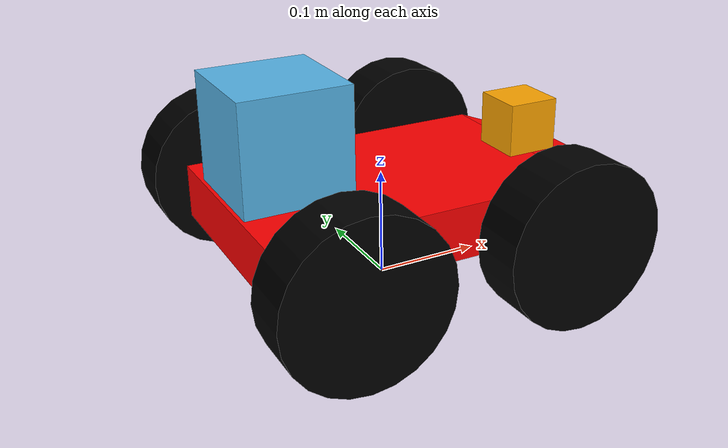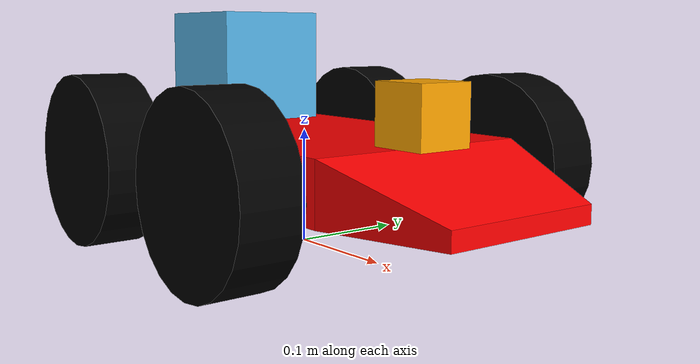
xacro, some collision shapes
<?xml version='1.0'?>

<robot name="test_robot" xmlns:xacro="http://www.ros.org/wiki/xacro">
  <xacro:include filename="$(find my_robot)/urdf/my_robot.gazebo" />
  <xacro:property name="wheel_mass" value="1.0"/>
  <xacro:property name="chassis_mass" value="10"/>
  <xacro:property name="wheel_radius" value="0.075"/>

  <link name="robot_footprint"></link>

  <joint name="robot_footprint_joint" type="fixed">
    <origin xyz="0 0 ${wheel_radius}" rpy="0 0 0" />
    <parent link="robot_footprint"/>
    <child link="chassis" />
  </joint>

  <link name="chassis">
    <inertial>
      <origin xyz="0.0 0.0 0.0" rpy="0.0 0.0 0.0"/>
      <mass value="${chassis_mass}"/>
      <inertia ixx="0.1" ixy="0.0" ixz="0.0" iyy="0.1" iyz="0.0" izz="0.1"/>
    </inertial>
    <visual name="">
      <origin xyz="0.0 0.0 0.0" rpy="0.0 0.0 0.0"/>
      <geometry>
        <box size="0.3 0.2 0.05"/>
      </geometry>
      <material name="">
        <color rgba="1.0 0.0 0.0 1.0"/>
      </material>
    </visual>
    <collision>
      <origin xyz="0.0 0.0 0.0" rpy="0.0 0.0 0.0"/>
      <geometry>
        <box size="0.3 0.2 0.05"/>
      </geometry>
    </collision>

  </link>

  <joint name="chassis__front" type="fixed">
    <origin xyz="0.15 0.0 0.0" rpy="0.0 0.0 0.0"/>
    <parent link="chassis"/>
    <child link="front"/>
    <axis xyz="0.0 0.0 0.0"/>
    <limit lower="0.0" upper="0.0" effort="0.0" velocity="0.0"/>
  </joint>

  <link name="front">
    <inertial>
      <origin xyz="0.0 0.0 0.0" rpy="0.0 0.0 -1.5707"/>
      <mass value="1"/>
      <inertia ixx="0.1" ixy="0.0" ixz="0.0" iyy="0.1" iyz="0.0" izz="0.1"/>
    </inertial>
    <visual name="">
      <origin xyz="0.0 0.0 0.0" rpy="0.0 0.0 -1.5707"/>
      <geometry>
        <mesh filename="package://my_robot/meshes/Front.dae"/>
      </geometry>
      <material name="">
        <color rgba="1.0 0.0 0.0 1.0"/>
      </material>
    </visual>
    <collision>
      <origin xyz="0.0 0.0 0.0" rpy="0.0 0.0 0.0"/>
      <geometry>
        <box size="0.1 0.2 0.05"/>
      </geometry>
    </collision>
  </link>

  <joint name="rear_left_wheel_hinge" type="continuous">
    <origin xyz="-0.1 0.15 0.0" rpy="0.0 0.0 0.0"/>
    <parent link="chassis"/>
    <child link="rear_left_wheel"/>
    <axis xyz="0.0 1 0.0"/>
    <limit lower="0.0" upper="0.0" effort="10000" velocity="1000"/>
    <dynamics damping="1.0" friction="1.0"/>
  </joint>

  <link name="rear_left_wheel">

    <inertial>
      <origin xyz="0.0 0.0 0.0" rpy="0.0 1.5707 1.5707"/>
      <mass value="${wheel_mass}"/>
      <inertia ixx="0.001" ixy="0.0" ixz="0.0" iyy="0.001" iyz="0.0" izz="0.001"/>
    </inertial>

    <visual name="">
      <origin xyz="0.0 0.0 0.0" rpy="0.0 1.5707 1.5707"/>
      <geometry>
        <cylinder radius="${wheel_radius}" length="0.05"/>
      </geometry>
      <material name="">
        <color rgba="0.0 0.0 0.0 1.0"/>
      </material>
    </visual>

    <collision>
      <origin xyz="0.0 0.0 0.0" rpy="0.0 1.5707 1.5707"/>
      <geometry>
        <cylinder radius="${wheel_radius}" length="0.05"/>
      </geometry>

      <surface>
        <friction>
          <ode>
            <mu>100000.0</mu>
            <mu2>100000.0</mu2>
          </ode>
        </friction>
        <contact>
          <ode>
            <min_depth>0.01</min_depth>
          </ode>
        </contact>
      </surface>

    </collision>

  </link>

  <joint name="front_left_wheel_hinge" type="continuous">
    <origin xyz="0.1 0.15 0.0" rpy="0.0 0.0 0.0"/>
    <parent link="chassis"/>
    <child link="front_left_wheel"/>
    <axis xyz="0.0 1 0.0"/>
    <limit lower="0.0" upper="0.0" effort="10000" velocity="1000"/>
    <dynamics damping="1.0" friction="1.0"/>
  </joint>

  <link name="front_left_wheel">

    <inertial>
      <origin xyz="0.0 0.0 0.0" rpy="0.0 1.5707 1.5707"/>
      <mass value="${wheel_mass}"/>
      <inertia ixx="0.001" ixy="0.0" ixz="0.0" iyy="0.001" iyz="0.0" izz="0.001"/>
    </inertial>

    <visual name="">
      <origin xyz="0.0 0.0 0.0" rpy="0.0 1.5707 1.5707"/>
      <geometry>
        <cylinder radius="${wheel_radius}" length="0.05"/>
      </geometry>
      <material name="">
        <color rgba="0.0 0.0 0.0 1.0"/>
      </material>
    </visual>

    <collision>
      <origin xyz="0.0 0.0 0.0" rpy="0.0 1.5707 1.5707"/>
      <geometry>
        <cylinder radius="${wheel_radius}" length="0.05"/>
      </geometry>
    </collision>

  </link>

  <joint name="rear_right_wheel_hinge" type="continuous">
    <origin xyz="-0.1 -0.15 0.0" rpy="0.0 0.0 0.0"/>
    <parent link="chassis"/>
    <child link="rear_right_wheel"/>
    <axis xyz="0.0 1 0.0"/>
    <limit lower="0.0" upper="0.0" effort="10000" velocity="1000"/>
    <dynamics damping="1.0" friction="1.0"/>
  </joint>

  <link name="rear_right_wheel">

    <inertial>
      <origin xyz="0.0 0.0 0.0" rpy="0.0 1.5707 1.5707"/>
      <mass value="${wheel_mass}"/>
      <inertia ixx="0.001" ixy="0.0" ixz="0.0" iyy="0.001" iyz="0.0" izz="0.001"/>
    </inertial>

    <visual name="">
      <origin xyz="0.0 0.0 0.0" rpy="0.0 1.5707 1.5707"/>
      <geometry>
        <cylinder radius="${wheel_radius}" length="0.05"/>
      </geometry>
      <material name="">
        <color rgba="0.0 0.0 0.0 1.0"/>
      </material>
    </visual>

    <collision>
      <origin xyz="0.0 0.0 0.0" rpy="0.0 1.5707 1.5707"/>
      <geometry>
        <cylinder radius="${wheel_radius}" length="0.05"/>
      </geometry>

      <surface>
        <friction>
          <ode>
            <mu>100000.0</mu>
            <mu2>100000.0</mu2>
          </ode>
        </friction>
        <contact>
          <ode>
            <min_depth>0.01</min_depth>
          </ode>
        </contact>
      </surface>
    </collision>

  </link>

  <joint name="front_right_wheel_hinge" type="continuous">
    <origin xyz="0.1 -0.15 0.0" rpy="0.0 0.0 0.0"/>
    <parent link="chassis"/>
    <child link="front_right_wheel"/>
    <axis xyz="0.0 1 0.0"/>
    <limit lower="0.0" upper="0.0" effort="10000" velocity="1000"/>
    <dynamics damping="1.0" friction="1.0"/>
  </joint>

  <link name="front_right_wheel">

    <inertial>
      <origin xyz="0.0 0.0 0.0" rpy="0.0 1.5707 1.5707"/>
      <mass value="${wheel_mass}"/>
      <inertia ixx="0.001" ixy="0.0" ixz="0.0" iyy="0.001" iyz="0.0" izz="0.001"/>
    </inertial>

    <visual name="">
      <origin xyz="0.0 0.0 0.0" rpy="0.0 1.5707 1.5707"/>
      <geometry>
        <cylinder radius="${wheel_radius}" length="0.05"/>
      </geometry>
      <material name="">
        <color rgba="0.0 0.0 0.0 1.0"/>
      </material>
    </visual>

    <collision>
      <origin xyz="0.0 0.0 0.0" rpy="0.0 1.5707 1.5707"/>
      <geometry>
        <cylinder radius="${wheel_radius}" length="0.05"/>
      </geometry>
    </collision>

  </link>

  <joint name="camera_joint" type="fixed">
    <origin xyz="0.15 0.0 0.05" rpy="0.0 0.0 0.0"/>
    <parent link="chassis"/>
    <child link="camera"/>
    <axis xyz="0.0 1 0.0"/>
    <limit lower="0.0" upper="0.0" effort="0.0" velocity="0.0"/>
  </joint>

  <link name="camera">

    <inertial>
      <origin xyz="0.0 0.0 0.0" rpy="0.0 0.0 0.0"/>
      <mass value="0.1"/>
      <inertia ixx="0.05" ixy="0.0" ixz="0.0" iyy="0.05" iyz="0.0" izz="0.05"/>
    </inertial>

    <visual name="">
      <origin xyz="0.0 0.0 0.0" rpy="0.0 0.0 0.0"/>
      <geometry>
        <box size="0.05 0.05 0.05"/>
      </geometry>
      <material name="">
        <color rgba="1.0 0.65 0.0 1.0"/>
      </material>
    </visual>

    <collision>
      <origin xyz="0.0 0.0 0.0" rpy="0.0 0.0 0.0"/>
      <geometry>
        <box size="0.05 0.05 0.05"/>
      </geometry>
    </collision>

  </link>

  <joint name="camera_optical_joint" type="fixed">
    <origin xyz="0.0 0.0 0.0" rpy="-1.5707 0.0 -1.5707"/>
    <parent link="camera"/>
    <child link="camera_link_optical"/>
  </joint>

  <link name="camera_link_optical">
  </link>

  <joint name="hokuyo_joint" type="fixed">
    <origin xyz="-0.1 0.0 0.08" rpy="0.0 0.0 0.0"/>
    <parent link="chassis"/>
    <child link="hokuyo"/>
    <axis xyz="0.0 1 0.0"/>
    <limit lower="0.0" upper="0.0" effort="0.0" velocity="0.0"/>
  </joint>

  <link name="hokuyo">

    <inertial>
      <origin xyz="0.0 0.0 0.0" rpy="0.0 0.0 0.0"/>
      <mass value="0.00001"/>
      <inertia ixx="1e-6" ixy="0.0" ixz="0.0" iyy="1e-6" iyz="0.0" izz="1e-6"/>
    </inertial>

    <visual name="">
      <origin xyz="0.0 0.0 0.0" rpy="0.0 0.0 0.0"/>
      <geometry>
        <mesh filename = "package://my_robot/meshes/hokuyo.dae"/>
      </geometry>
    </visual>

    <collision>
      <origin xyz="0.0 0.0 0.0" rpy="0.0 0.0 0.0"/>
      <geometry>
        <box size="0.1 0.1 0.1"/>
      </geometry>
    </collision>
  </link>

  <gazebo reference="front_right_wheel">
    <material>Gazebo/Black</material>
  </gazebo>

  <gazebo reference="rear_right_wheel">
    <material>Gazebo/Black</material>
  </gazebo>

  <gazebo reference="front_left_wheel">
    <material>Gazebo/Black</material>
  </gazebo>

  <gazebo reference="rear_left_wheel">
    <material>Gazebo/Black</material>
  </gazebo>

  <gazebo reference="front">
    <material>Gazebo/Yellow</material>
  </gazebo>

  <gazebo reference="chassis">
    <material>Gazebo/Red</material>
  </gazebo>

  <gazebo reference="camera">
    <material>Gazebo/Orange</material>
  </gazebo>

</robot>
